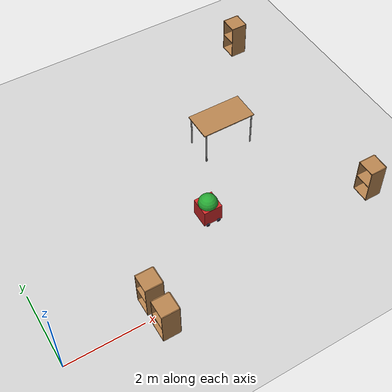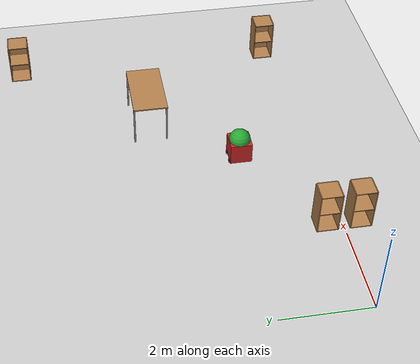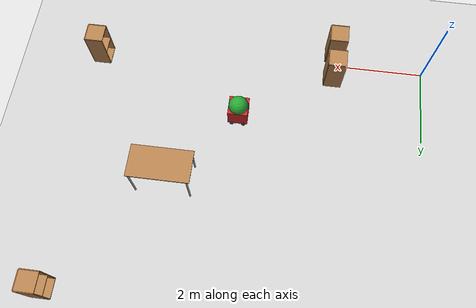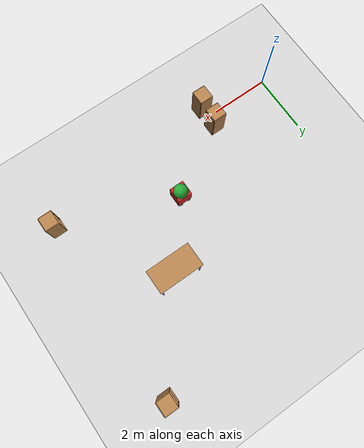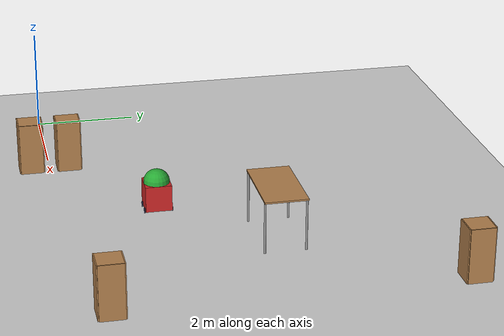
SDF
<sdf version="1.6">
 <world name="default">
  <model name="ground_plane">
   <static>1</static>
   <link name="link">
    <collision name="collision">
     <geometry><plane><normal>0 0 1</normal><size>100 100</size></plane></geometry>
     <surface><friction><ode><mu>100</mu><mu2>50</mu2></ode></friction></surface>
    </collision>
    <visual name="visual">
     <cast_shadows>0</cast_shadows>
     <geometry><plane><normal>0 0 1</normal><size>100 100</size></plane></geometry>
     <material>
      <script><uri>file://media/materials/scripts/gazebo.material</uri><name>Gazebo/Grey</name></script>
     </material>
    </visual>
   </link>
  </model>
  <model name="simplebot_0">
   <link name="robot_link">
    <pose>0 0 0.3 0 -0 0</pose>
    <inertial>
     <mass>1</mass>
     <inertia><ixx>1</ixx><ixy>0</ixy><ixz>0</ixz><iyy>1</iyy><iyz>0</iyz><izz>1</izz></inertia>
    </inertial>
    <visual name="head_visual">
     <pose>0 0 0.25 0 0 -2.5</pose>
     <geometry><sphere><radius>0.25</radius></sphere></geometry>
     <material>
      <shader type="pixel"><normal_map>__default__</normal_map></shader>
      <emissive>0 0 0 1</emissive>
      <ambient>0.3 0.3 0.3 1</ambient>
      <diffuse>0.7 0.7 0.7 1</diffuse>
      <specular>0.01 0.01 0.01 1</specular>
      <script><uri>file://media/materials/scripts/gazebo.material</uri><name>Gazebo/Green</name></script>
     </material>
    </visual>
    <visual name="body_visual">
     <geometry><box><size>0.5 0.5 0.5</size></box></geometry>
     <material>
      <shader type="pixel"><normal_map>__default__</normal_map></shader>
      <emissive>0 0 0 1</emissive>
      <ambient>1 0 0 1</ambient>
      <diffuse>1 0 0 1</diffuse>
      <specular>0.1 0.1 0.1 1</specular>
      <script><uri>file://media/materials/scripts/gazebo.material</uri><name>Gazebo/Red</name></script>
     </material>
    </visual>
    <visual name="power_led_visual">
     <pose>0.225 0.225 0.25 0 -0 0</pose>
     <geometry><sphere><radius>0.003</radius></sphere></geometry>
     <material>
      <ambient>0 0 0 1</ambient>
      <diffuse>0 0 0 1</diffuse>
      <specular>0 0 0 1</specular>
      <emissive>0 1 0 1</emissive>
     </material>
    </visual>
    <collision name="body_collision">
     <geometry><box><size>0.5 0.5 0.5</size></box></geometry>
     <surface>
      <friction>
       <ode><mu>1</mu><mu2>1</mu2><fdir1>0 0 0</fdir1><slip1>0</slip1><slip2>0</slip2></ode>
       <torsional>
        <coefficient>1</coefficient>
        <patch_radius>0</patch_radius>
        <surface_radius>0</surface_radius>
        <use_patch_radius>1</use_patch_radius>
        <ode><slip>0</slip></ode>
       </torsional>
      </friction>
      <bounce><restitution_coefficient>0</restitution_coefficient><threshold>1e+06</threshold></bounce>
      <contact>
       <collide_without_contact>0</collide_without_contact>
       <collide_without_contact_bitmask>1</collide_without_contact_bitmask>
       <collide_bitmask>1</collide_bitmask>
       <ode>
        <soft_cfm>0</soft_cfm>
        <soft_erp>0.2</soft_erp>
        <kp>1e+13</kp>
        <kd>1</kd>
        <max_vel>0.01</max_vel>
        <min_depth>0</min_depth>
       </ode>
       <bullet>
        <split_impulse>1</split_impulse>
        <split_impulse_penetration_threshold>-0.01</split_impulse_penetration_threshold>
        <soft_cfm>0</soft_cfm>
        <soft_erp>0.2</soft_erp>
        <kp>1e+13</kp>
        <kd>1</kd>
       </bullet>
      </contact>
     </surface>
    </collision>
   </link>
   <link name="wheel_1">
    <pose>0.15 -0.26 0.05 1.5707 -0 0</pose>
    <inertial>
     <mass>1</mass>
     <inertia><ixx>0.145833</ixx><ixy>0</ixy><ixz>0</ixz><iyy>0.145833</iyy><iyz>0</iyz><izz>0.125</izz></inertia>
    </inertial>
    <visual name="visual">
     <geometry><cylinder><radius>0.05</radius><length>0.02</length></cylinder></geometry>
     <material>
      <lighting>1</lighting>
      <script><uri>file://media/materials/scripts/gazebo.material</uri><name>Gazebo/Grey</name></script>
      <shader type="pixel"><normal_map>__default__</normal_map></shader>
      <ambient>0.1 0.1 0.1 1</ambient>
      <diffuse>0.1 0.1 0.2 1</diffuse>
      <specular>0.01 0.01 0.01 1</specular>
      <emissive>0 0 0 1</emissive>
     </material>
    </visual>
    <collision name="collision">
     <geometry><cylinder><radius>0.05</radius><length>0.02</length></cylinder></geometry>
     <surface>
      <friction>
       <ode><mu>1</mu><mu2>1</mu2><fdir1>0 0 0</fdir1><slip1>0</slip1><slip2>0</slip2></ode>
       <torsional>
        <coefficient>1</coefficient>
        <patch_radius>0</patch_radius>
        <surface_radius>0</surface_radius>
        <use_patch_radius>1</use_patch_radius>
        <ode><slip>0</slip></ode>
       </torsional>
      </friction>
      <bounce><restitution_coefficient>0</restitution_coefficient><threshold>1e+06</threshold></bounce>
      <contact>
       <collide_without_contact>0</collide_without_contact>
       <collide_without_contact_bitmask>1</collide_without_contact_bitmask>
       <collide_bitmask>1</collide_bitmask>
       <ode>
        <soft_cfm>0</soft_cfm>
        <soft_erp>0.2</soft_erp>
        <kp>1e+13</kp>
        <kd>1</kd>
        <max_vel>0.01</max_vel>
        <min_depth>0</min_depth>
       </ode>
       <bullet>
        <split_impulse>1</split_impulse>
        <split_impulse_penetration_threshold>-0.01</split_impulse_penetration_threshold>
        <soft_cfm>0</soft_cfm>
        <soft_erp>0.2</soft_erp>
        <kp>1e+13</kp>
        <kd>1</kd>
       </bullet>
      </contact>
     </surface>
    </collision>
   </link>
   <link name="wheel_2">
    <pose>0.15 0.26 0.05 1.5707 -0 0</pose>
    <inertial>
     <mass>1</mass>
     <inertia><ixx>0.145833</ixx><ixy>0</ixy><ixz>0</ixz><iyy>0.145833</iyy><iyz>0</iyz><izz>0.125</izz></inertia>
    </inertial>
    <visual name="visual">
     <geometry><cylinder><radius>0.05</radius><length>0.02</length></cylinder></geometry>
     <material>
      <lighting>1</lighting>
      <script><uri>file://media/materials/scripts/gazebo.material</uri><name>Gazebo/Grey</name></script>
      <shader type="pixel"><normal_map>__default__</normal_map></shader>
      <ambient>0.1 0.1 0.1 1</ambient>
      <diffuse>0.1 0.1 0.2 1</diffuse>
      <specular>0.01 0.01 0.01 1</specular>
      <emissive>0 0 0 1</emissive>
     </material>
    </visual>
    <collision name="collision">
     <geometry><cylinder><radius>0.05</radius><length>0.02</length></cylinder></geometry>
     <surface>
      <friction>
       <ode><mu>1</mu><mu2>1</mu2><fdir1>0 0 0</fdir1><slip1>0</slip1><slip2>0</slip2></ode>
       <torsional>
        <coefficient>1</coefficient>
        <patch_radius>0</patch_radius>
        <surface_radius>0</surface_radius>
        <use_patch_radius>1</use_patch_radius>
        <ode><slip>0</slip></ode>
       </torsional>
      </friction>
      <bounce><restitution_coefficient>0</restitution_coefficient><threshold>1e+06</threshold></bounce>
      <contact>
       <collide_without_contact>0</collide_without_contact>
       <collide_without_contact_bitmask>1</collide_without_contact_bitmask>
       <collide_bitmask>1</collide_bitmask>
       <ode>
        <soft_cfm>0</soft_cfm>
        <soft_erp>0.2</soft_erp>
        <kp>1e+13</kp>
        <kd>1</kd>
        <max_vel>0.01</max_vel>
        <min_depth>0</min_depth>
       </ode>
       <bullet>
        <split_impulse>1</split_impulse>
        <split_impulse_penetration_threshold>-0.01</split_impulse_penetration_threshold>
        <soft_cfm>0</soft_cfm>
        <soft_erp>0.2</soft_erp>
        <kp>1e+13</kp>
        <kd>1</kd>
       </bullet>
      </contact>
     </surface>
    </collision>
   </link>
   <link name="wheel_3">
    <pose>-0.15 -0.26 0.05 1.5707 -0 0</pose>
    <inertial>
     <mass>1</mass>
     <inertia><ixx>0.145833</ixx><ixy>0</ixy><ixz>0</ixz><iyy>0.145833</iyy><iyz>0</iyz><izz>0.125</izz></inertia>
    </inertial>
    <visual name="visual">
     <geometry><cylinder><radius>0.05</radius><length>0.02</length></cylinder></geometry>
     <material>
      <lighting>1</lighting>
      <script><uri>file://media/materials/scripts/gazebo.material</uri><name>Gazebo/Grey</name></script>
      <shader type="pixel"><normal_map>__default__</normal_map></shader>
      <ambient>0.1 0.1 0.1 1</ambient>
      <diffuse>0.1 0.1 0.2 1</diffuse>
      <specular>0.01 0.01 0.01 1</specular>
      <emissive>0 0 0 1</emissive>
     </material>
    </visual>
    <collision name="collision">
     <geometry><cylinder><radius>0.05</radius><length>0.02</length></cylinder></geometry>
     <surface>
      <friction>
       <ode><mu>1</mu><mu2>1</mu2><fdir1>0 0 0</fdir1><slip1>0</slip1><slip2>0</slip2></ode>
       <torsional>
        <coefficient>1</coefficient>
        <patch_radius>0</patch_radius>
        <surface_radius>0</surface_radius>
        <use_patch_radius>1</use_patch_radius>
        <ode><slip>0</slip></ode>
       </torsional>
      </friction>
      <bounce><restitution_coefficient>0</restitution_coefficient><threshold>1e+06</threshold></bounce>
      <contact>
       <collide_without_contact>0</collide_without_contact>
       <collide_without_contact_bitmask>1</collide_without_contact_bitmask>
       <collide_bitmask>1</collide_bitmask>
       <ode>
        <soft_cfm>0</soft_cfm>
        <soft_erp>0.2</soft_erp>
        <kp>1e+13</kp>
        <kd>1</kd>
        <max_vel>0.01</max_vel>
        <min_depth>0</min_depth>
       </ode>
       <bullet>
        <split_impulse>1</split_impulse>
        <split_impulse_penetration_threshold>-0.01</split_impulse_penetration_threshold>
        <soft_cfm>0</soft_cfm>
        <soft_erp>0.2</soft_erp>
        <kp>1e+13</kp>
        <kd>1</kd>
       </bullet>
      </contact>
     </surface>
    </collision>
   </link>
   <link name="wheel_4">
    <pose>-0.15 0.26 0.05 1.5707 -0 0</pose>
    <inertial>
     <mass>1</mass>
     <inertia><ixx>0.145833</ixx><ixy>0</ixy><ixz>0</ixz><iyy>0.145833</iyy><iyz>0</iyz><izz>0.125</izz></inertia>
    </inertial>
    <visual name="visual">
     <geometry><cylinder><radius>0.05</radius><length>0.02</length></cylinder></geometry>
     <material>
      <lighting>1</lighting>
      <script><uri>file://media/materials/scripts/gazebo.material</uri><name>Gazebo/Grey</name></script>
      <shader type="pixel"><normal_map>__default__</normal_map></shader>
      <ambient>0.1 0.1 0.1 1</ambient>
      <diffuse>0.1 0.1 0.2 1</diffuse>
      <specular>0.01 0.01 0.01 1</specular>
      <emissive>0 0 0 1</emissive>
     </material>
    </visual>
    <collision name="collision">
     <geometry><cylinder><radius>0.05</radius><length>0.02</length></cylinder></geometry>
     <surface>
      <friction>
       <ode><mu>1</mu><mu2>1</mu2><fdir1>0 0 0</fdir1><slip1>0</slip1><slip2>0</slip2></ode>
       <torsional>
        <coefficient>1</coefficient>
        <patch_radius>0</patch_radius>
        <surface_radius>0</surface_radius>
        <use_patch_radius>1</use_patch_radius>
        <ode><slip>0</slip></ode>
       </torsional>
      </friction>
      <bounce><restitution_coefficient>0</restitution_coefficient><threshold>1e+06</threshold></bounce>
      <contact>
       <collide_without_contact>0</collide_without_contact>
       <collide_without_contact_bitmask>1</collide_without_contact_bitmask>
       <collide_bitmask>1</collide_bitmask>
       <ode>
        <soft_cfm>0</soft_cfm>
        <soft_erp>0.2</soft_erp>
        <kp>1e+13</kp>
        <kd>1</kd>
        <max_vel>0.01</max_vel>
        <min_depth>0</min_depth>
       </ode>
       <bullet>
        <split_impulse>1</split_impulse>
        <split_impulse_penetration_threshold>-0.01</split_impulse_penetration_threshold>
        <soft_cfm>0</soft_cfm>
        <soft_erp>0.2</soft_erp>
        <kp>1e+13</kp>
        <kd>1</kd>
       </bullet>
      </contact>
     </surface>
    </collision>
   </link>
   <joint name="robot_link_JOINT_0" type="revolute">
    <parent>robot_link</parent>
    <child>wheel_1</child>
    <axis>
     <xyz>0 0 1</xyz>
     <use_parent_model_frame>0</use_parent_model_frame>
     <limit>
      <lower>-1.79769e+308</lower>
      <upper>1.79769e+308</upper>
      <effort>-1</effort>
      <velocity>-1</velocity>
     </limit>
     <dynamics>
      <spring_reference>0</spring_reference>
      <spring_stiffness>0</spring_stiffness>
      <damping>0</damping>
      <friction>0</friction>
     </dynamics>
    </axis>
    <physics>
     <ode><limit><cfm>0</cfm><erp>0.2</erp></limit><suspension><cfm>0</cfm><erp>0.2</erp></suspension></ode>
    </physics>
   </joint>
   <joint name="robot_link_JOINT_2" type="revolute">
    <parent>robot_link</parent>
    <child>wheel_2</child>
    <axis>
     <xyz>0 0 1</xyz>
     <use_parent_model_frame>0</use_parent_model_frame>
     <limit>
      <lower>-1.79769e+308</lower>
      <upper>1.79769e+308</upper>
      <effort>-1</effort>
      <velocity>-1</velocity>
     </limit>
     <dynamics>
      <spring_reference>0</spring_reference>
      <spring_stiffness>0</spring_stiffness>
      <damping>0</damping>
      <friction>0</friction>
     </dynamics>
    </axis>
    <physics>
     <ode><limit><cfm>0</cfm><erp>0.2</erp></limit><suspension><cfm>0</cfm><erp>0.2</erp></suspension></ode>
    </physics>
   </joint>
   <joint name="robot_link_JOINT_3" type="revolute">
    <parent>robot_link</parent>
    <child>wheel_3</child>
    <axis>
     <xyz>0 0 1</xyz>
     <use_parent_model_frame>0</use_parent_model_frame>
     <limit>
      <lower>-1.79769e+308</lower>
      <upper>1.79769e+308</upper>
      <effort>-1</effort>
      <velocity>-1</velocity>
     </limit>
     <dynamics>
      <spring_reference>0</spring_reference>
      <spring_stiffness>0</spring_stiffness>
      <damping>0</damping>
      <friction>0</friction>
     </dynamics>
    </axis>
    <physics>
     <ode><limit><cfm>0</cfm><erp>0.2</erp></limit><suspension><cfm>0</cfm><erp>0.2</erp></suspension></ode>
    </physics>
   </joint>
   <joint name="robot_link_JOINT_4" type="revolute">
    <parent>robot_link</parent>
    <child>wheel_4</child>
    <axis>
     <xyz>0 0 1</xyz>
     <use_parent_model_frame>0</use_parent_model_frame>
     <limit>
      <lower>-1.79769e+308</lower>
      <upper>1.79769e+308</upper>
      <effort>-1</effort>
      <velocity>-1</velocity>
     </limit>
     <dynamics>
      <spring_reference>0</spring_reference>
      <spring_stiffness>0</spring_stiffness>
      <damping>0</damping>
      <friction>0</friction>
     </dynamics>
    </axis>
    <physics>
     <ode><limit><cfm>0</cfm><erp>0.2</erp></limit><suspension><cfm>0</cfm><erp>0.2</erp></suspension></ode>
    </physics>
   </joint>
   <static>1</static>
   <pose>4.72586 1.79106 0 0 -0 0</pose>
  </model>
  <model name="cabinet">
   <static>1</static>
   <link name="cabinet_bottom_plate">
    <inertial>
     <pose>0 0 -1 0 -0 0</pose>
     <inertia><ixx>2.05</ixx><ixy>0</ixy><ixz>0</ixz><iyy>2.05</iyy><iyz>0</iyz><izz>2.05</izz></inertia>
     <mass>25</mass>
    </inertial>
    <collision name="cabinet_bottom_plate_geom">
     <pose>0 0 0.01 0 -0 0</pose>
     <geometry><box><size>0.45 0.45 0.02</size></box></geometry>
    </collision>
    <visual name="cabinet_bottom_plate_geom_visual">
     <pose>0 0 0.01 0 -0 0</pose>
     <geometry><box><size>0.45 0.45 0.02</size></box></geometry>
     <material>
      <script><uri>file://media/materials/scripts/gazebo.material</uri><name>Gazebo/Wood</name></script>
     </material>
    </visual>
    <collision name="cabinet_bottom_plate_geom_cabinet_back_plate">
     <pose>0.235 0 0.51 0 -0 0</pose>
     <geometry><box><size>0.02 0.45 1.02</size></box></geometry>
    </collision>
    <visual name="cabinet_bottom_plate_geom_cabinet_back_plate_visual">
     <pose>0.235 0 0.51 0 -0 0</pose>
     <geometry><box><size>0.02 0.45 1.02</size></box></geometry>
     <material>
      <script><uri>file://media/materials/scripts/gazebo.material</uri><name>Gazebo/Wood</name></script>
     </material>
    </visual>
    <collision name="cabinet_bottom_plate_geom_cabinet_left_plate">
     <pose>0 0.235 0.51 0 -0 0</pose>
     <geometry><box><size>0.45 0.02 1.02</size></box></geometry>
    </collision>
    <visual name="cabinet_bottom_plate_geom_cabinet_left_plate_visual">
     <pose>0 0.235 0.51 0 -0 0</pose>
     <geometry><box><size>0.45 0.02 1.02</size></box></geometry>
     <material>
      <script><uri>file://media/materials/scripts/gazebo.material</uri><name>Gazebo/Wood</name></script>
     </material>
    </visual>
    <collision name="cabinet_bottom_plate_geom_cabinet_middle_plate">
     <pose>0 0 0.51 0 -0 0</pose>
     <geometry><box><size>0.45 0.45 0.02</size></box></geometry>
    </collision>
    <visual name="cabinet_bottom_plate_geom_cabinet_middle_plate_visual">
     <pose>0 0 0.51 0 -0 0</pose>
     <geometry><box><size>0.45 0.45 0.02</size></box></geometry>
     <material>
      <script><uri>file://media/materials/scripts/gazebo.material</uri><name>Gazebo/Wood</name></script>
     </material>
    </visual>
    <collision name="cabinet_bottom_plate_geom_cabinet_right_plate">
     <pose>0 -0.235 0.51 0 -0 0</pose>
     <geometry><box><size>0.45 0.02 1.02</size></box></geometry>
    </collision>
    <visual name="cabinet_bottom_plate_geom_cabinet_right_plate_visual">
     <pose>0 -0.235 0.51 0 -0 0</pose>
     <geometry><box><size>0.45 0.02 1.02</size></box></geometry>
     <material>
      <script><uri>file://media/materials/scripts/gazebo.material</uri><name>Gazebo/Wood</name></script>
     </material>
    </visual>
    <collision name="cabinet_bottom_plate_geom_cabinet_top_plate">
     <pose>0 0 1.01 0 -0 0</pose>
     <geometry><box><size>0.45 0.45 0.02</size></box></geometry>
    </collision>
    <visual name="cabinet_bottom_plate_geom_cabinet_top_plate_visual">
     <pose>0 0 1.01 0 -0 0</pose>
     <geometry><box><size>0.45 0.45 0.02</size></box></geometry>
     <material>
      <script><uri>file://media/materials/scripts/gazebo.material</uri><name>Gazebo/Wood</name></script>
     </material>
    </visual>
   </link>
   <pose>8.60462 0.390726 0 0 -0 0</pose>
  </model>
  <model name="cabinet_2">
   <static>1</static>
   <link name="cabinet_bottom_plate">
    <inertial>
     <pose>0 0 -1 0 -0 0</pose>
     <inertia><ixx>2.05</ixx><ixy>0</ixy><ixz>0</ixz><iyy>2.05</iyy><iyz>0</iyz><izz>2.05</izz></inertia>
     <mass>25</mass>
    </inertial>
    <collision name="cabinet_bottom_plate_geom">
     <pose>0 0 0.01 0 -0 0</pose>
     <geometry><box><size>0.45 0.45 0.02</size></box></geometry>
    </collision>
    <visual name="cabinet_bottom_plate_geom_visual">
     <pose>0 0 0.01 0 -0 0</pose>
     <geometry><box><size>0.45 0.45 0.02</size></box></geometry>
     <material>
      <script><uri>file://media/materials/scripts/gazebo.material</uri><name>Gazebo/Wood</name></script>
     </material>
    </visual>
    <collision name="cabinet_bottom_plate_geom_cabinet_back_plate">
     <pose>0.235 0 0.51 0 -0 0</pose>
     <geometry><box><size>0.02 0.45 1.02</size></box></geometry>
    </collision>
    <visual name="cabinet_bottom_plate_geom_cabinet_back_plate_visual">
     <pose>0.235 0 0.51 0 -0 0</pose>
     <geometry><box><size>0.02 0.45 1.02</size></box></geometry>
     <material>
      <script><uri>file://media/materials/scripts/gazebo.material</uri><name>Gazebo/Wood</name></script>
     </material>
    </visual>
    <collision name="cabinet_bottom_plate_geom_cabinet_left_plate">
     <pose>0 0.235 0.51 0 -0 0</pose>
     <geometry><box><size>0.45 0.02 1.02</size></box></geometry>
    </collision>
    <visual name="cabinet_bottom_plate_geom_cabinet_left_plate_visual">
     <pose>0 0.235 0.51 0 -0 0</pose>
     <geometry><box><size>0.45 0.02 1.02</size></box></geometry>
     <material>
      <script><uri>file://media/materials/scripts/gazebo.material</uri><name>Gazebo/Wood</name></script>
     </material>
    </visual>
    <collision name="cabinet_bottom_plate_geom_cabinet_middle_plate">
     <pose>0 0 0.51 0 -0 0</pose>
     <geometry><box><size>0.45 0.45 0.02</size></box></geometry>
    </collision>
    <visual name="cabinet_bottom_plate_geom_cabinet_middle_plate_visual">
     <pose>0 0 0.51 0 -0 0</pose>
     <geometry><box><size>0.45 0.45 0.02</size></box></geometry>
     <material>
      <script><uri>file://media/materials/scripts/gazebo.material</uri><name>Gazebo/Wood</name></script>
     </material>
    </visual>
    <collision name="cabinet_bottom_plate_geom_cabinet_right_plate">
     <pose>0 -0.235 0.51 0 -0 0</pose>
     <geometry><box><size>0.45 0.02 1.02</size></box></geometry>
    </collision>
    <visual name="cabinet_bottom_plate_geom_cabinet_right_plate_visual">
     <pose>0 -0.235 0.51 0 -0 0</pose>
     <geometry><box><size>0.45 0.02 1.02</size></box></geometry>
     <material>
      <script><uri>file://media/materials/scripts/gazebo.material</uri><name>Gazebo/Wood</name></script>
     </material>
    </visual>
    <collision name="cabinet_bottom_plate_geom_cabinet_top_plate">
     <pose>0 0 1.01 0 -0 0</pose>
     <geometry><box><size>0.45 0.45 0.02</size></box></geometry>
    </collision>
    <visual name="cabinet_bottom_plate_geom_cabinet_top_plate_visual">
     <pose>0 0 1.01 0 -0 0</pose>
     <geometry><box><size>0.45 0.45 0.02</size></box></geometry>
     <material>
      <script><uri>file://media/materials/scripts/gazebo.material</uri><name>Gazebo/Wood</name></script>
     </material>
    </visual>
   </link>
   <pose>2.3631 0.381868 0 0 -0 0</pose>
  </model>
  <model name="cabinet_3">
   <static>1</static>
   <link name="cabinet_bottom_plate">
    <inertial>
     <pose>0 0 -1 0 -0 0</pose>
     <inertia><ixx>2.05</ixx><ixy>0</ixy><ixz>0</ixz><iyy>2.05</iyy><iyz>0</iyz><izz>2.05</izz></inertia>
     <mass>25</mass>
    </inertial>
    <collision name="cabinet_bottom_plate_geom">
     <pose>0 0 0.01 0 -0 0</pose>
     <geometry><box><size>0.45 0.45 0.02</size></box></geometry>
    </collision>
    <visual name="cabinet_bottom_plate_geom_visual">
     <pose>0 0 0.01 0 -0 0</pose>
     <geometry><box><size>0.45 0.45 0.02</size></box></geometry>
     <material>
      <script><uri>file://media/materials/scripts/gazebo.material</uri><name>Gazebo/Wood</name></script>
     </material>
    </visual>
    <collision name="cabinet_bottom_plate_geom_cabinet_back_plate">
     <pose>0.235 0 0.51 0 -0 0</pose>
     <geometry><box><size>0.02 0.45 1.02</size></box></geometry>
    </collision>
    <visual name="cabinet_bottom_plate_geom_cabinet_back_plate_visual">
     <pose>0.235 0 0.51 0 -0 0</pose>
     <geometry><box><size>0.02 0.45 1.02</size></box></geometry>
     <material>
      <script><uri>file://media/materials/scripts/gazebo.material</uri><name>Gazebo/Wood</name></script>
     </material>
    </visual>
    <collision name="cabinet_bottom_plate_geom_cabinet_left_plate">
     <pose>0 0.235 0.51 0 -0 0</pose>
     <geometry><box><size>0.45 0.02 1.02</size></box></geometry>
    </collision>
    <visual name="cabinet_bottom_plate_geom_cabinet_left_plate_visual">
     <pose>0 0.235 0.51 0 -0 0</pose>
     <geometry><box><size>0.45 0.02 1.02</size></box></geometry>
     <material>
      <script><uri>file://media/materials/scripts/gazebo.material</uri><name>Gazebo/Wood</name></script>
     </material>
    </visual>
    <collision name="cabinet_bottom_plate_geom_cabinet_middle_plate">
     <pose>0 0 0.51 0 -0 0</pose>
     <geometry><box><size>0.45 0.45 0.02</size></box></geometry>
    </collision>
    <visual name="cabinet_bottom_plate_geom_cabinet_middle_plate_visual">
     <pose>0 0 0.51 0 -0 0</pose>
     <geometry><box><size>0.45 0.45 0.02</size></box></geometry>
     <material>
      <script><uri>file://media/materials/scripts/gazebo.material</uri><name>Gazebo/Wood</name></script>
     </material>
    </visual>
    <collision name="cabinet_bottom_plate_geom_cabinet_right_plate">
     <pose>0 -0.235 0.51 0 -0 0</pose>
     <geometry><box><size>0.45 0.02 1.02</size></box></geometry>
    </collision>
    <visual name="cabinet_bottom_plate_geom_cabinet_right_plate_visual">
     <pose>0 -0.235 0.51 0 -0 0</pose>
     <geometry><box><size>0.45 0.02 1.02</size></box></geometry>
     <material>
      <script><uri>file://media/materials/scripts/gazebo.material</uri><name>Gazebo/Wood</name></script>
     </material>
    </visual>
    <collision name="cabinet_bottom_plate_geom_cabinet_top_plate">
     <pose>0 0 1.01 0 -0 0</pose>
     <geometry><box><size>0.45 0.45 0.02</size></box></geometry>
    </collision>
    <visual name="cabinet_bottom_plate_geom_cabinet_top_plate_visual">
     <pose>0 0 1.01 0 -0 0</pose>
     <geometry><box><size>0.45 0.45 0.02</size></box></geometry>
     <material>
      <script><uri>file://media/materials/scripts/gazebo.material</uri><name>Gazebo/Wood</name></script>
     </material>
    </visual>
   </link>
   <pose>2.35717 -0.358 0 0 -0 0</pose>
  </model>
  <model name="table_3">
   <static>1</static>
   <link name="link">
    <collision name="surface">
     <pose>0 0 1 0 -0 0</pose>
     <geometry><box><size>1.5 0.8 0.03</size></box></geometry>
     <surface><friction><ode><mu>0.6</mu><mu2>0.6</mu2></ode></friction></surface>
    </collision>
    <visual name="visual1">
     <pose>0 0 1 0 -0 0</pose>
     <geometry><box><size>1.5 0.8 0.03</size></box></geometry>
     <material>
      <script><uri>file://media/materials/scripts/gazebo.material</uri><name>Gazebo/Wood</name></script>
     </material>
    </visual>
    <collision name="front_left_leg">
     <pose>0.68 0.38 0.5 0 -0 0</pose>
     <geometry><cylinder><radius>0.02</radius><length>1</length></cylinder></geometry>
    </collision>
    <visual name="front_left_leg">
     <pose>0.68 0.38 0.5 0 -0 0</pose>
     <geometry><cylinder><radius>0.02</radius><length>1</length></cylinder></geometry>
     <material>
      <script><uri>file://media/materials/scripts/gazebo.material</uri><name>Gazebo/Grey</name></script>
     </material>
    </visual>
    <collision name="front_right_leg">
     <pose>0.68 -0.38 0.5 0 -0 0</pose>
     <geometry><cylinder><radius>0.02</radius><length>1</length></cylinder></geometry>
    </collision>
    <visual name="front_right_leg">
     <pose>0.68 -0.38 0.5 0 -0 0</pose>
     <geometry><cylinder><radius>0.02</radius><length>1</length></cylinder></geometry>
     <material>
      <script><uri>file://media/materials/scripts/gazebo.material</uri><name>Gazebo/Grey</name></script>
     </material>
    </visual>
    <collision name="back_right_leg">
     <pose>-0.68 -0.38 0.5 0 -0 0</pose>
     <geometry><cylinder><radius>0.02</radius><length>1</length></cylinder></geometry>
    </collision>
    <visual name="back_right_leg">
     <pose>-0.68 -0.38 0.5 0 -0 0</pose>
     <geometry><cylinder><radius>0.02</radius><length>1</length></cylinder></geometry>
     <material>
      <script><uri>file://media/materials/scripts/gazebo.material</uri><name>Gazebo/Grey</name></script>
     </material>
    </visual>
    <collision name="back_left_leg">
     <pose>-0.68 0.38 0.5 0 -0 0</pose>
     <geometry><cylinder><radius>0.02</radius><length>1</length></cylinder></geometry>
    </collision>
    <visual name="back_left_leg">
     <pose>-0.68 0.38 0.5 0 -0 0</pose>
     <geometry><cylinder><radius>0.02</radius><length>1</length></cylinder></geometry>
     <material>
      <script><uri>file://media/materials/scripts/gazebo.material</uri><name>Gazebo/Grey</name></script>
     </material>
    </visual>
   </link>
   <pose>6.3077 3.72927 0 0 -0 0</pose>
  </model>
  <model name="cabinet_5">
   <static>1</static>
   <link name="cabinet_bottom_plate">
    <inertial>
     <pose>0 0 -1 0 -0 0</pose>
     <inertia><ixx>2.05</ixx><ixy>0</ixy><ixz>0</ixz><iyy>2.05</iyy><iyz>0</iyz><izz>2.05</izz></inertia>
     <mass>25</mass>
    </inertial>
    <collision name="cabinet_bottom_plate_geom">
     <pose>0 0 0.01 0 -0 0</pose>
     <geometry><box><size>0.45 0.45 0.02</size></box></geometry>
    </collision>
    <visual name="cabinet_bottom_plate_geom_visual">
     <pose>0 0 0.01 0 -0 0</pose>
     <geometry><box><size>0.45 0.45 0.02</size></box></geometry>
     <material>
      <script><uri>file://media/materials/scripts/gazebo.material</uri><name>Gazebo/Wood</name></script>
     </material>
    </visual>
    <collision name="cabinet_bottom_plate_geom_cabinet_back_plate">
     <pose>0.235 0 0.51 0 -0 0</pose>
     <geometry><box><size>0.02 0.45 1.02</size></box></geometry>
    </collision>
    <visual name="cabinet_bottom_plate_geom_cabinet_back_plate_visual">
     <pose>0.235 0 0.51 0 -0 0</pose>
     <geometry><box><size>0.02 0.45 1.02</size></box></geometry>
     <material>
      <script><uri>file://media/materials/scripts/gazebo.material</uri><name>Gazebo/Wood</name></script>
     </material>
    </visual>
    <collision name="cabinet_bottom_plate_geom_cabinet_left_plate">
     <pose>0 0.235 0.51 0 -0 0</pose>
     <geometry><box><size>0.45 0.02 1.02</size></box></geometry>
    </collision>
    <visual name="cabinet_bottom_plate_geom_cabinet_left_plate_visual">
     <pose>0 0.235 0.51 0 -0 0</pose>
     <geometry><box><size>0.45 0.02 1.02</size></box></geometry>
     <material>
      <script><uri>file://media/materials/scripts/gazebo.material</uri><name>Gazebo/Wood</name></script>
     </material>
    </visual>
    <collision name="cabinet_bottom_plate_geom_cabinet_middle_plate">
     <pose>0 0 0.51 0 -0 0</pose>
     <geometry><box><size>0.45 0.45 0.02</size></box></geometry>
    </collision>
    <visual name="cabinet_bottom_plate_geom_cabinet_middle_plate_visual">
     <pose>0 0 0.51 0 -0 0</pose>
     <geometry><box><size>0.45 0.45 0.02</size></box></geometry>
     <material>
      <script><uri>file://media/materials/scripts/gazebo.material</uri><name>Gazebo/Wood</name></script>
     </material>
    </visual>
    <collision name="cabinet_bottom_plate_geom_cabinet_right_plate">
     <pose>0 -0.235 0.51 0 -0 0</pose>
     <geometry><box><size>0.45 0.02 1.02</size></box></geometry>
    </collision>
    <visual name="cabinet_bottom_plate_geom_cabinet_right_plate_visual">
     <pose>0 -0.235 0.51 0 -0 0</pose>
     <geometry><box><size>0.45 0.02 1.02</size></box></geometry>
     <material>
      <script><uri>file://media/materials/scripts/gazebo.material</uri><name>Gazebo/Wood</name></script>
     </material>
    </visual>
    <collision name="cabinet_bottom_plate_geom_cabinet_top_plate">
     <pose>0 0 1.01 0 -0 0</pose>
     <geometry><box><size>0.45 0.45 0.02</size></box></geometry>
    </collision>
    <visual name="cabinet_bottom_plate_geom_cabinet_top_plate_visual">
     <pose>0 0 1.01 0 -0 0</pose>
     <geometry><box><size>0.45 0.45 0.02</size></box></geometry>
     <material>
      <script><uri>file://media/materials/scripts/gazebo.material</uri><name>Gazebo/Wood</name></script>
     </material>
    </visual>
   </link>
   <pose>8.60746 6.68908 0 0 -0 0</pose>
  </model>
 </world>
</sdf>
